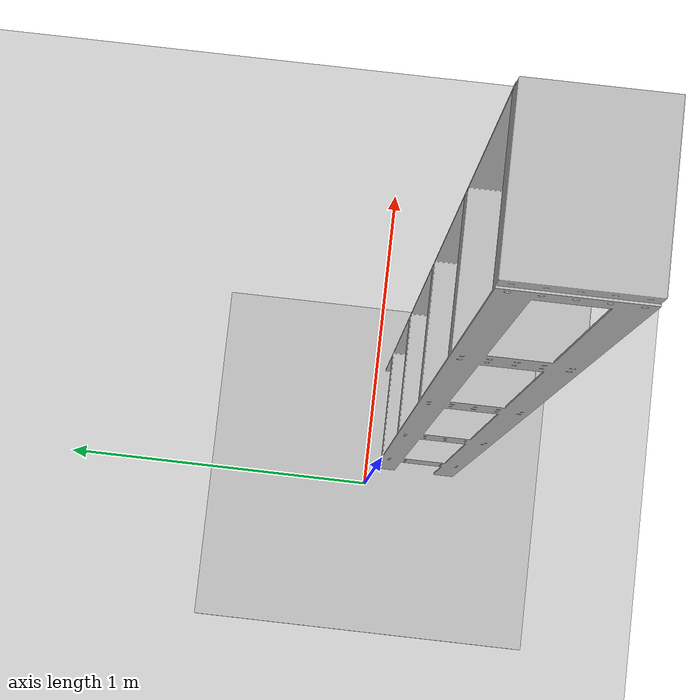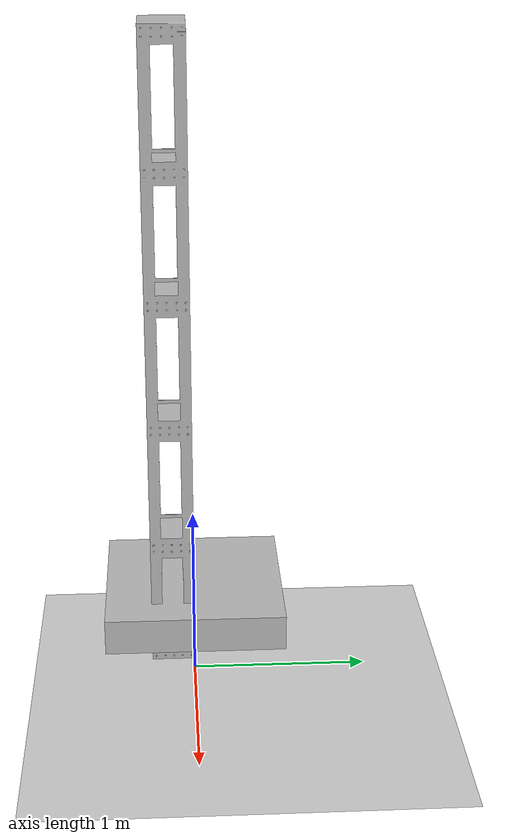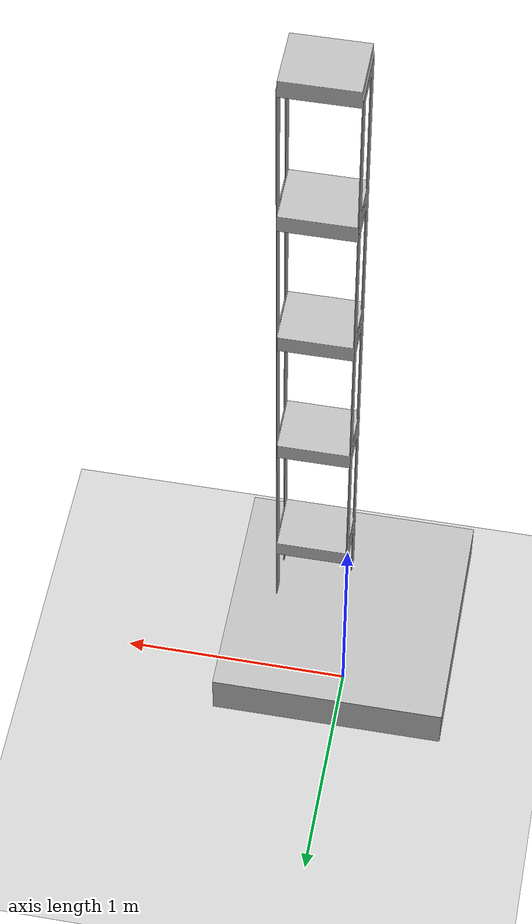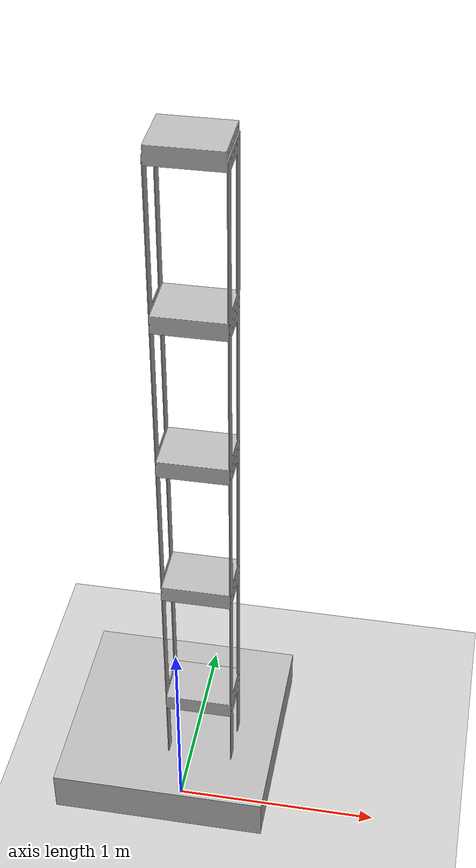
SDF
<?xml version="1.0" ?>
<sdf version="1.6">
  <world name="default">
    <!-- Ground Plane -->
    <include>
      <uri>model://ground_plane</uri>
    </include>

    <!-- Sun -->
    <include>
      <uri>model://sun</uri>
    </include>

    <!-- Building Model -->
    <include>
      <uri>model://building</uri>
        <pose>0 0 0.2 1.5708 0 0</pose> <!-- Position adjusted -->
    </include>

    <!-- Shaking Table -->
    <include>
      <uri>model://shaking_table</uri>
    </include>

    <!-- Fixed Joint to Ground -->
    <joint name="table_to_ground" type="fixed">
      <parent>world</parent>
      <child>shaking_table::table</child>
    </joint>

        <!-- Fixed Joint to Attach Building to Shaking Table -->
<joint name="table_building_joint" type="fixed">
  <parent>shaking_table::table</parent>
  <child>shear_building::building_link</child>
</joint>

  </world>
</sdf>

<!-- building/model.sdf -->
<sdf version="1.6">
  <model name="shear_building">
    <static>true</static>
    <link name="building_link">
      <!-- Visual -->
      <visual name="building_visual">
        <geometry>
          <mesh>
            <uri>model://building/meshes/shear_building.stl</uri>
            <scale>0.002 0.002 0.002</scale> <!-- Reduce the size by 10x -->
          </mesh>
        </geometry>
      </visual>

      <!-- Collision -->
      <collision name="building_collision">
        <geometry>
          <mesh>
            <uri>model://building/meshes/shear_building.stl</uri>
            <scale>0.002 0.002 0.002</scale> <!-- Reduce the size by 10x -->
          </mesh>
        </geometry>
      </collision>
    </link>
    <!-- Add a plugin to the building to control the scale  -->
    <plugin name="building_plugin" filename="libbuilding_plugin.so"/>
  </model>
</sdf>

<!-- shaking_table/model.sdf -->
<sdf version="1.6">
  <model name="shaking_table">
    <static>false</static>
    <link name="table">
      <pose>0 0 0.5 0 0 0</pose>

      <!-- Collision Definition -->
      <collision name="collision">
        <geometry>
          <box>
            <size>1.0 1.0 0.2</size> <!-- Adjusted size -->
          </box>
        </geometry>
      </collision>

      <!-- Visual Definition -->
      <visual name="visual">
        <geometry>
          <box>
            <size>1.0 1.0 0.2</size> <!-- Adjusted size -->
          </box>
        </geometry>
      </visual>
    </link>

    <!-- Shaking Table Plugin -->
    <plugin name="shaking_plugin" filename="libshaking_plugin.so">
      <amplitude>0.5</amplitude>
      <frequency>1.0</frequency>
    </plugin>
  </model>
</sdf>
